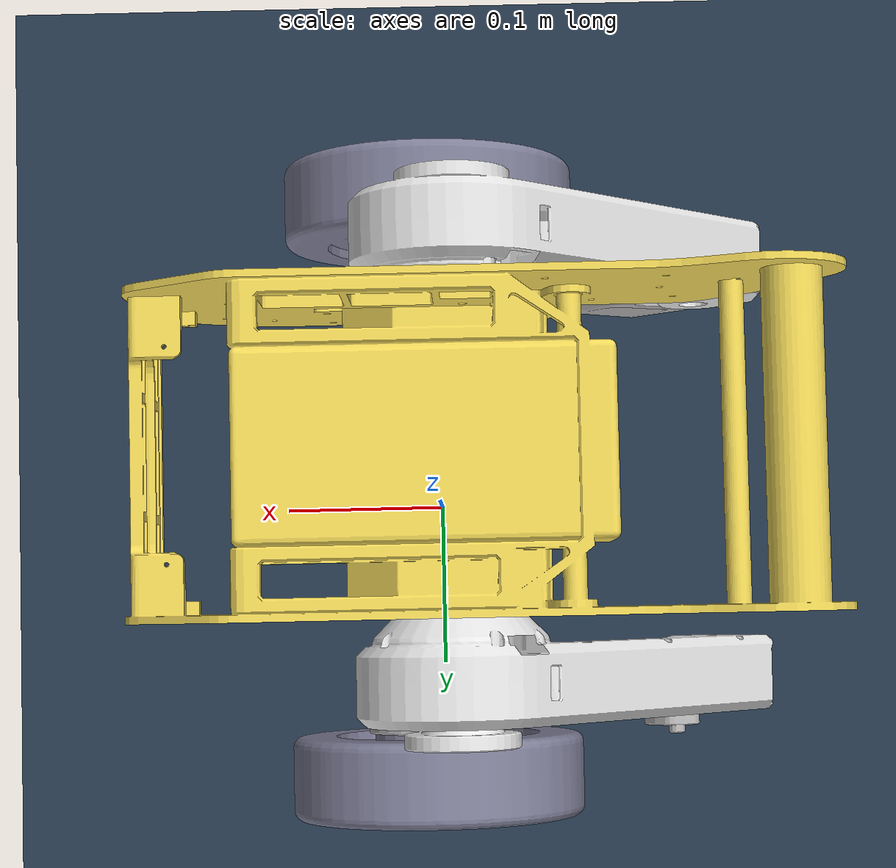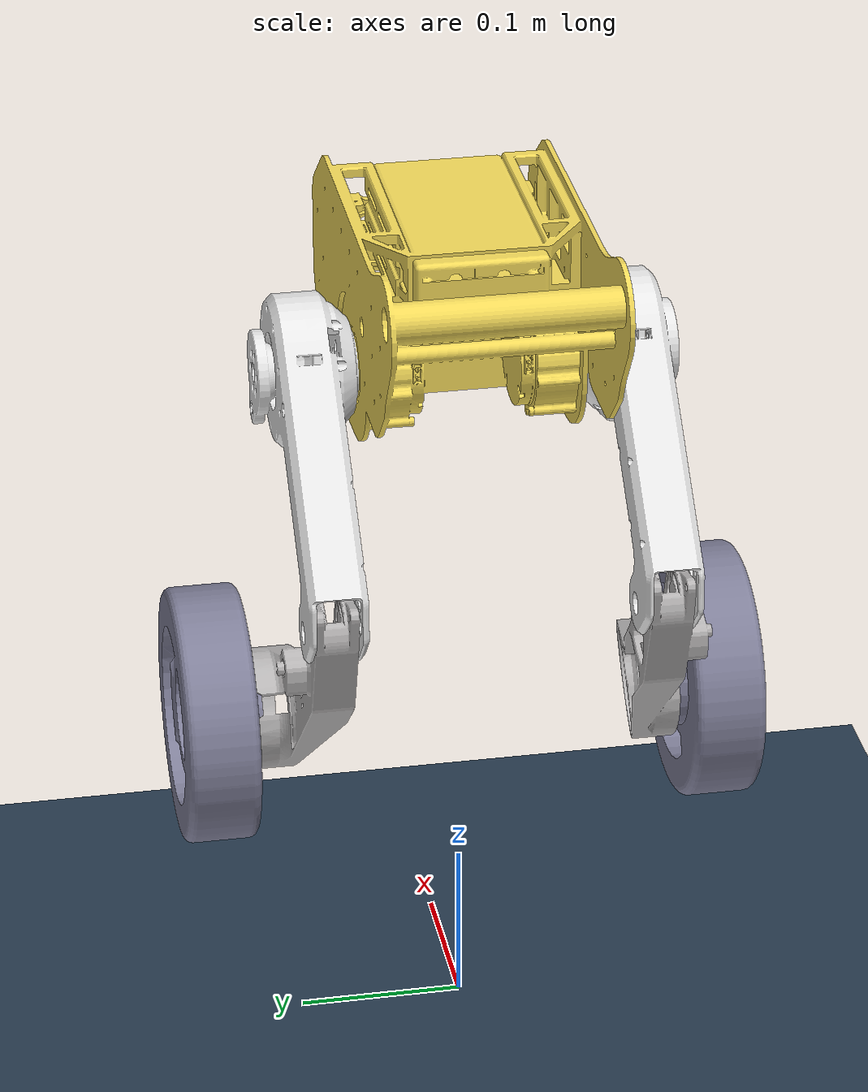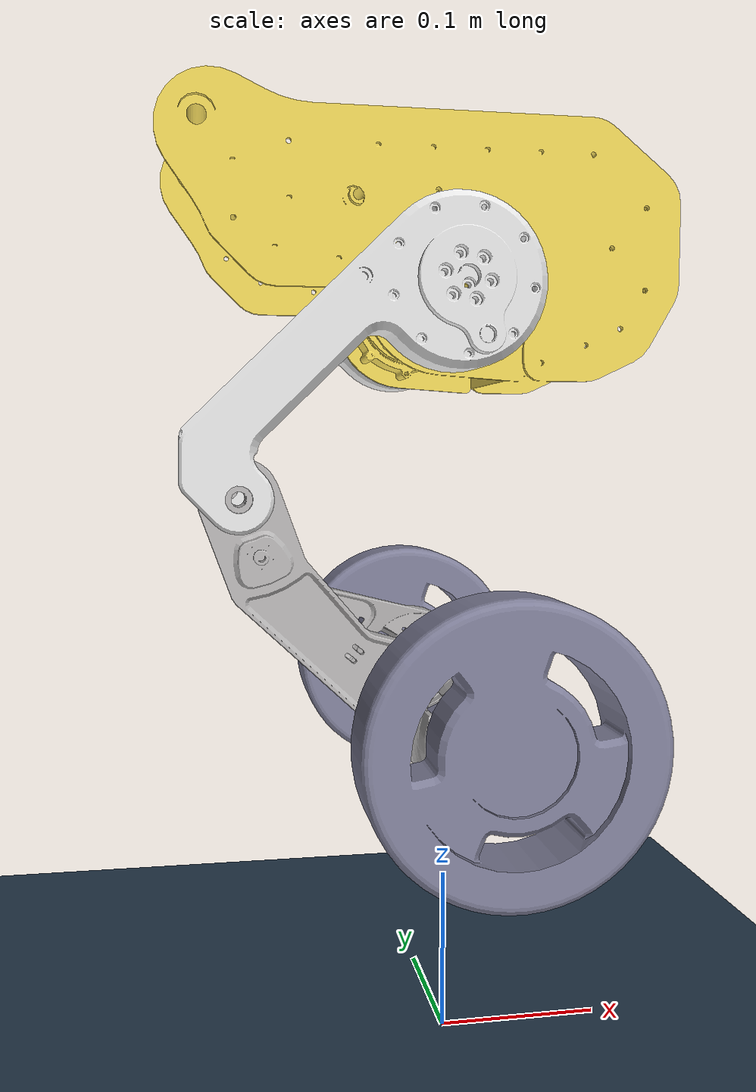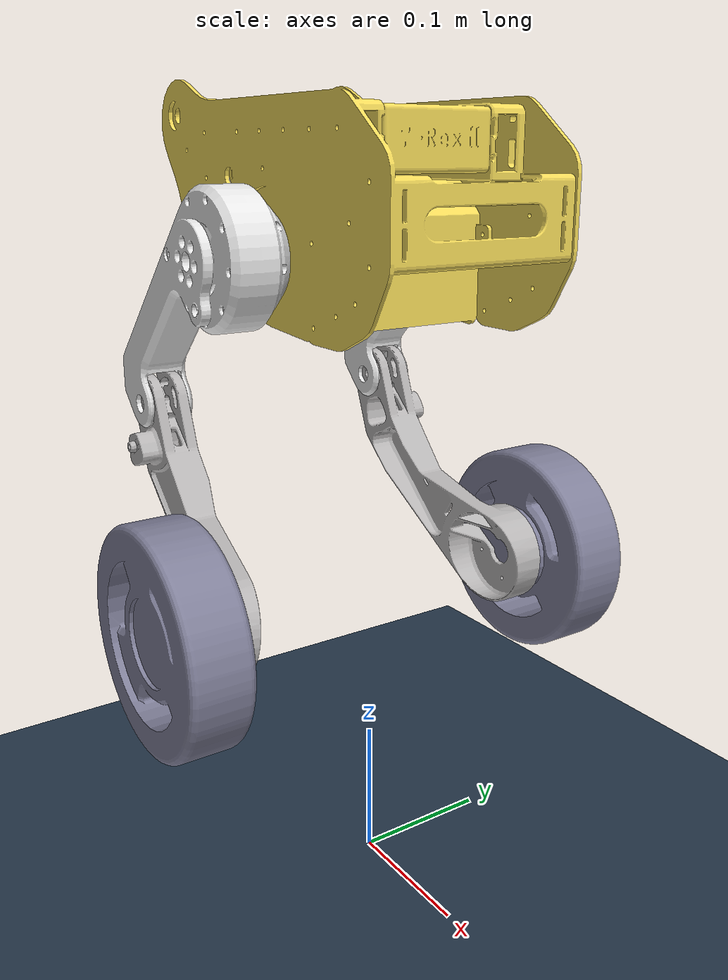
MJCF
<mujoco model="wfs">
  <compiler angle="radian"/>
  <asset>
    <texture type="skybox" builtin="gradient" rgb1="0.3 0.5 0.7" rgb2="0 0 0" width="512" height="512" />
    <texture name="texplane" type="2d" builtin="checker" rgb1=".2 .3 .4" rgb2=".1 0.15 0.2" width="512" height="512" mark="cross" markrgb=".8 .8 .8" />
    <material name="matplane" reflectance="0.3" texture="texplane" texrepeat="1 1" texuniform="true" />
    <mesh name="base_link" file="base_link.STL"/>
    <mesh name="la" file="la.STL"/>
    <mesh name="ll" file="ll.STL"/>
    <mesh name="lw" file="lw.STL"/>
    <mesh name="ra" file="ra.STL"/>
    <mesh name="rl" file="rl.STL"/>
    <mesh name="rw" file="rw.STL"/>
    <texture builtin="gradient" height="15" rgb1="1 1 1" rgb2="0 0 0" type="skybox" width="100"/>
    <texture builtin="flat" height="80" mark="cross" markrgb="1 1 1" name="texgeom" random="0.1" rgb1="0.8 0.6 0.4" rgb2="0.8 0.6 0.4" type="cube" width="127"/>
    <texture builtin="checker" height="80" name="texplane2" rgb1="0.2 0.4 0.6" rgb2="0.8 0.8 0.8" type="2d" width="100"/>
    <material name="MatPlane" reflectance="1.5" shininess="1" specular="1" texrepeat="60 60" texture="texplane"/>
    <material name="geoms" texture="texgeom" texuniform="true"/>
    <hfield name="mytilted" file="heightmap.png" nrow="0" ncol="0" size="150 150 0.3 1.5" />
  </asset>
  <worldbody>
  <light directional="true" diffuse=".4 .4 .4" specular="0.1 0.1 0.1" pos="0 0 5.0" dir="0 0 -1" castshadow="false" />
    <light directional="true" diffuse=".6 .6 .6" specular="0.2 0.2 0.2" pos="0 0 4" dir="0 0 -1" />
    <geom name="floor" pos="0 0 0" size="50 50 1" type="plane" material="matplane" margin="0.001" condim="3" friction="1 0.005 0.0001" />
     <body name="root" pos="0 0 0.5" quat="0.707 0 0 0">
     <joint name="root" type="free"/>
       <geom type="mesh" rgba="0.949 0.85 0.349 1" mass="2" mesh="base_link"/>
        <site name="root_site1" pos="0 0 0" quat="0 0 0.707 0"/>
        <body name="la" pos="-0.014207 0.1052 -0.0465">
          <inertial pos="-0.033704 -0.010899 -0.020545" quat="0.633304 0.33959 0.323717 0.615477" mass="0.7" diaginertia="0.000520051 0.000462179 6.79406e-05"/>
          <joint name="laj" type="hinge" limited="true" pos="0 0 0" axis="0 -1 0" range="-0.3 2"/>
          <geom type="mesh" rgba="0.902 0.902 0.902 1" mesh="la"/>
          <body name="ll" pos="-0.11545 -0.0075 -0.11166">
            <inertial pos="0.054145 0.0083245 -0.063627" quat="0.269031 0.608011 0.67566 0.318479" mass="0.28" diaginertia="0.000577889 0.000550901 4.20401e-05"/>
            <joint name="llj" type="hinge" limited="true" pos="0 0 0" axis="0 1 0" range="-1 0.68" />
            <geom type="mesh" rgba="0.7137 0.7059 0.7059 1" mesh="ll"/>
            <body name="lw" pos="0.13092 0.027 -0.12321">
              <inertial pos="-1.4311e-05 0.027855 -1.1802e-05" quat="0.669586 -0.22712 -0.227073 0.669708" mass="0.8" diaginertia="0.0022205 0.00121924 0.00121886"/>
              <joint name="lwj" type="hinge" pos="0 0 0" axis="0 -1 0" />
              <geom type="mesh" rgba="0.5 0.5 0.6 1" mesh="lw"/>
            </body>
          </body>
        </body>
        <body name="ra" pos="-0.014207 -0.1052 -0.0465">
          <inertial pos="-0.033704 0.010899 -0.020545" quat="0.615476 0.323721 0.339594 0.633301" mass="0.7" diaginertia="0.000520061 0.000462186 6.79438e-05"/>
          <joint name="raj" type="hinge" limited="true" pos="0 0 0" axis="0 1 0" range="-2 0.3" />
          <geom type="mesh" rgba="0.902 0.902 0.902 1" mesh="ra"/>
          <body name="rl" pos="-0.11545 0.0075 -0.11166">
            <inertial pos="0.054146 -0.0083247 -0.063628" quat="0.318482 0.675652 0.60802 0.269026" mass="0.28" diaginertia="0.000577909 0.000550911 4.20499e-05"/>
            <joint name="rlj" type="hinge" limited="true" pos="0 0 0" axis="0 -1 0" range="-0.68 1"/>
            <geom type="mesh" rgba="0.7137 0.7059 0.7059 1" mesh="rl"/>
            <body name="rw" pos="0.13092 -0.027 -0.12321">
              <inertial pos="-1.4311e-05 -0.027855 -1.1802e-05" quat="0.669708 -0.227073 -0.22712 0.669586" mass="0.8" diaginertia="0.0022205 0.00121924 0.00121886"/>
              <joint name="rwj" type="hinge" pos="0 0 0" axis="0 1 0"/>
              <geom type="mesh" rgba="0.5 0.5 0.6 1" mesh="rw"/>
            </body>
          </body>
        </body>
    </body>
  </worldbody>

  <sensor>
        <accelerometer name="root_accel" site="root_site1"/>
        <rangefinder name="radar1" site="root_site1"/>
        <gyro name="root_gyro" site="root_site1"/>
      </sensor>

   <actuator>
    <motor name="laj" joint="laj" forcelimited="true" forcerange="-12 12" ctrlrange="-12 12"/>
    <position name="llj" joint="llj" forcelimited="true" forcerange="-12 12" ctrlrange="-12 12"/>
    <position name="lmotor" joint="lwj" forcelimited="true" forcerange="-2 2" ctrlrange="-2 2"/>

    <motor name="raj" joint="raj" forcelimited="true" forcerange="-12 12" ctrlrange="-12 12"/>
    <position name="rlj" joint="rlj" forcelimited="true" forcerange="-12 12" ctrlrange="-12 12"/>
    <position name="rmotor" joint="rwj" forcelimited="true" forcerange="-2 2" ctrlrange="-2 2"/>
    </actuator>

</mujoco>
